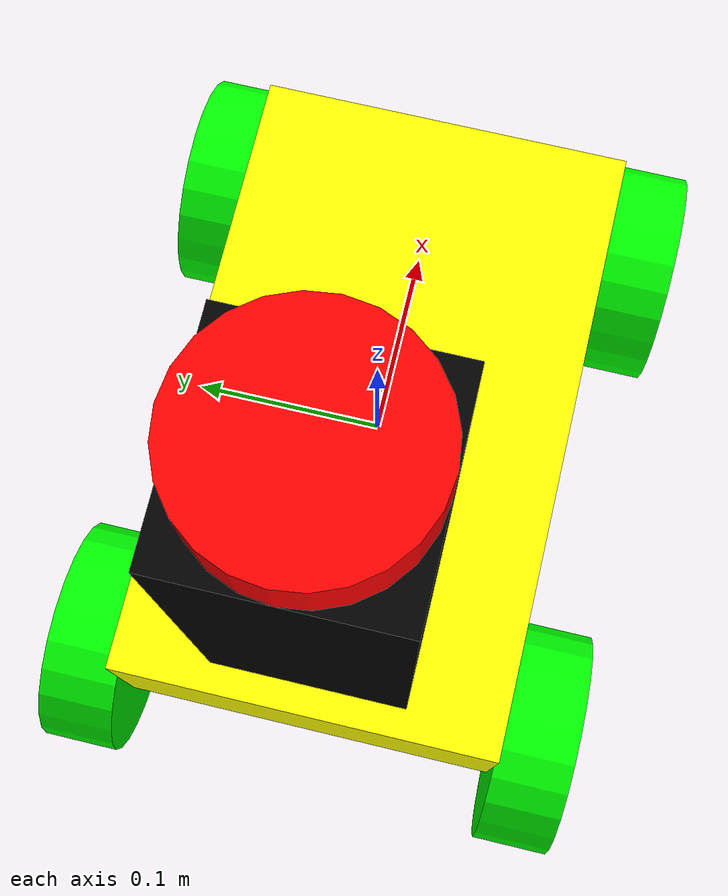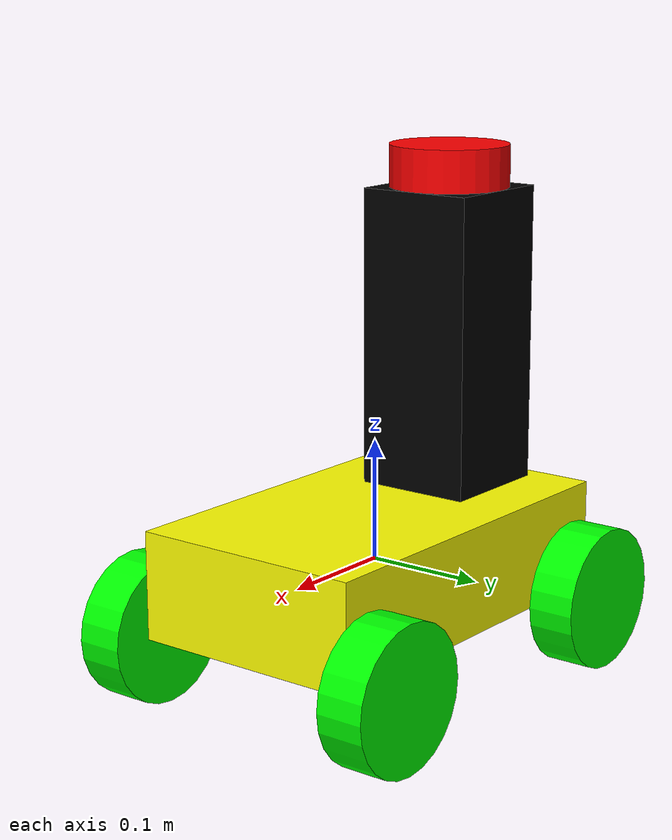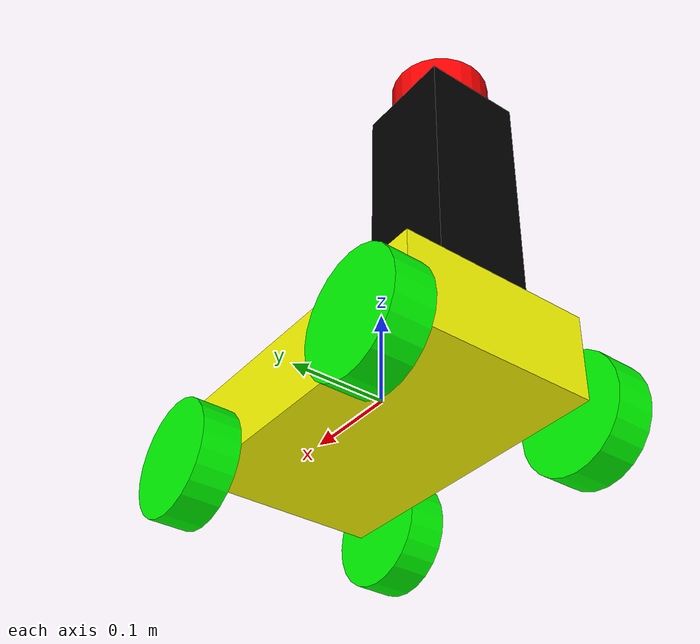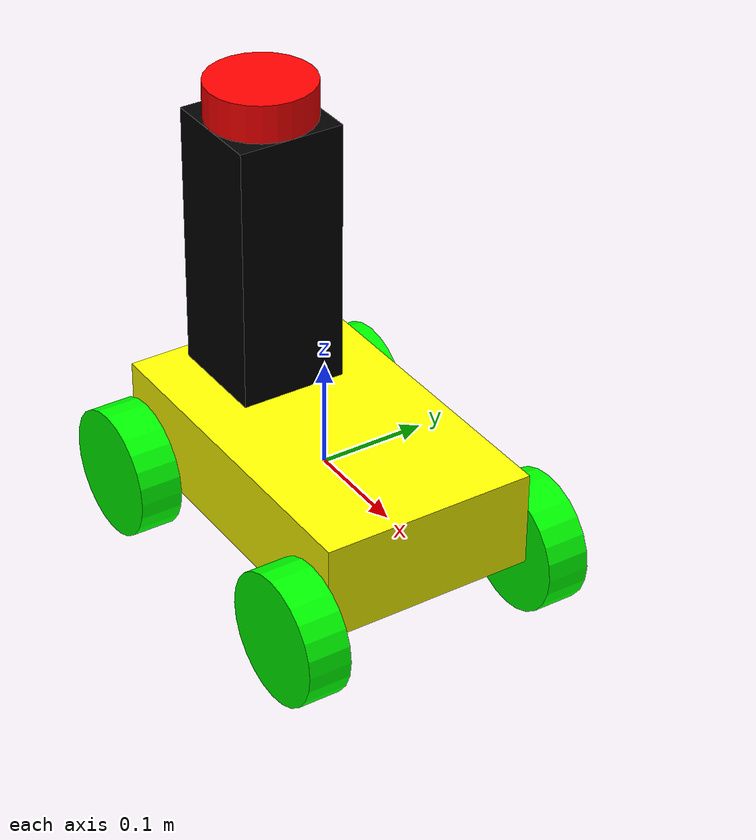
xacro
<?xml version="1.0"?>
<robot xmlns:xacro="http://www.ros.org/wiki/xacro"  name="robot">
<link name="base_link">
</link>
<joint name="chassis_joint" type="fixed">
    <parent link="base_link"/>
    <child link="chassis"/>
    <origin xyz="0 0 0"/>
</joint>
<link name="chassis">
    <visual>
      <geometry>
        <box size="0.33 0.20 0.09"/> <!-- Length 330mm, width estimated 250mm, height 90mm -->
      </geometry>
      <material name="yellow">
        <color rgba="1 1 0 1"/>
      </material>
    </visual>
    <collision>
      <geometry>
        <box size="0.33 0.25 0.09"/>
      </geometry>
    </collision>
    <inertial>
      <mass value="5.0"/>
      <origin xyz="0 0 0"/>
      <inertia ixx="0.1" ixy="0.0" ixz="0.0" iyy="0.1" iyz="0.0" izz="0.1"/>
    </inertial>
  </link>

  <!-- Front-Left Wheel -->
  <link name="wheel_fl">
    <visual>
	  <origin rpy="1.570795 0 0" xyz="0 0 0"/>
      <geometry>
        <cylinder length="0.04" radius="0.06"/> <!-- Diameter 120mm, height 40mm -->
      </geometry>
      <material name="green">
        <color rgba="0 1 0 1"/>
      </material>
    </visual>
    <collision>
      <geometry>
        <cylinder length="0.04" radius="0.06"/>
      </geometry>
    </collision>
    <inertial>
      <mass value="0.5"/>
      <origin xyz="0 0 0"/>
      <inertia ixx="0.01" ixy="0.0" ixz="0.0" iyy="0.01" iyz="0.0" izz="0.01"/>
    </inertial>
  </link>

  <joint name="joint_wheel_fl" type="continuous">
    <parent link="chassis"/>
    <child link="wheel_fl"/>
    <origin xyz="0.14 0.12 -0.045" rpy="0 0 0"/> <!-- Rotate the wheel to make it perpendicular -->
    <axis xyz="0 1 0"/>
  </joint>

  <!-- Front-Right Wheel -->
  <link name="wheel_fr">
    <visual>
	  <origin rpy="1.570795 0 0" xyz="0 0 0"/>
      <geometry>
        <cylinder length="0.04" radius="0.06"/> <!-- Diameter 120mm, height 40mm -->
      </geometry>
      <material name="green">
        <color rgba="0 1 0 1"/>
      </material>
    </visual>
    <collision>
      <geometry>
        <cylinder length="0.04" radius="0.06"/>
      </geometry>
    </collision>
    <inertial>
      <mass value="0.5"/>
      <origin xyz="0 0 0"/>
      <inertia ixx="0.01" ixy="0.0" ixz="0.0" iyy="0.01" iyz="0.0" izz="0.01"/>
    </inertial>
  </link>

  <joint name="joint_wheel_fr" type="continuous">
    <parent link="chassis"/>
    <child link="wheel_fr"/>
    <origin xyz="0.14 -0.12 -0.045" rpy="0 1.57 0"/> <!-- Rotate the wheel to make it perpendicular -->
    <axis xyz="0 1 0"/>
  </joint>

  <!-- Rear-Left Wheel -->
  <link name="wheel_rl">
    <visual>
	  <origin rpy="1.570795 0 0" xyz="0 0 0"/>
      <geometry>
        <cylinder length="0.04" radius="0.06"/> <!-- Diameter 120mm, height 40mm -->
      </geometry>
      <material name="green">
        <color rgba="0 1 0 1"/>
      </material>
    </visual>
    <collision>
      <geometry>
        <cylinder length="0.04" radius="0.06"/>
      </geometry>
    </collision>
    <inertial>
      <mass value="0.5"/>
      <origin xyz="0 0 0"/>
      <inertia ixx="0.01" ixy="0.0" ixz="0.0" iyy="0.01" iyz="0.0" izz="0.01"/>
    </inertial>
  </link>

  <joint name="joint_wheel_rl" type="continuous">
    <parent link="chassis"/>
    <child link="wheel_rl"/>
    <origin xyz="-0.14 0.12 -0.045" rpy="0 1.57 0"/> <!-- Rotate the wheel to make it perpendicular -->
    <axis xyz="0 1 0"/>
  </joint>

  <!-- Rear-Right Wheel -->
  <link name="wheel_rr">
    <visual>
	  <origin rpy="1.570795 0 0" xyz="0 0 0"/>
      <geometry>
        <cylinder length="0.04" radius="0.06"/> <!-- Diameter 120mm, height 40mm -->
      </geometry>
      <material name="green">
        <color rgba="0 1 0 1"/>
      </material>
    </visual>
    <collision>
      <geometry>
        <cylinder length="0.04" radius="0.06"/>
      </geometry>
    </collision>
    <inertial>
      <mass value="0.5"/>
      <origin xyz="0 0 0"/>
      <inertia ixx="0.01" ixy="0.0" ixz="0.0" iyy="0.01" iyz="0.0" izz="0.01"/>
    </inertial>
  </link>

  <joint name="joint_wheel_rr" type="continuous">
    <parent link="chassis"/>
    <child link="wheel_rr"/>
    <origin xyz="-0.14 -0.12 -0.045" rpy="0 1.57 0"/> <!-- Rotate the wheel to make it perpendicular -->
    <axis xyz="0 1 0"/>
  </joint>

  <!-- Tower on top -->
  <link name="tower">
    <visual>
      <geometry>
        <box size="0.1 0.1 0.31"/> <!-- Approximate width and length, height 310mm -->
      </geometry>
      <material name="black">
        <color rgba="0 0 0 1"/>
      </material>
    </visual>
    <collision>
      <geometry>
        <box size="0.1 0.1 0.31"/>
      </geometry>
    </collision>
    <inertial>
      <mass value="1.0"/>
      <origin xyz="0 0 0"/>
      <inertia ixx="0.01" ixy="0.0" ixz="0.0" iyy="0.01" iyz="0.0" izz="0.01"/>
    </inertial>
  </link>

  <joint name="joint_tower" type="fixed">
    <parent link="chassis"/>
    <child link="tower"/>
    <origin xyz="-0.1 0 0.14" rpy="0 0 0"/>
  </joint>

  <joint name="laser_joint" type="fixed">
        <parent link="tower"/>
        <child link="laser_frame"/>
        <origin xyz="0 0 0.17" rpy="0 0 0"/>
  </joint>

  <link name="laser_frame">
    <visual>
        <geometry>
            <cylinder radius="0.05" length="0.04"/>
        </geometry>
        <material name="red"/>
    </visual>
  </link>

  <material name="red">
    <color rgba="1 0 0 1"/>
  </material>

</robot>
